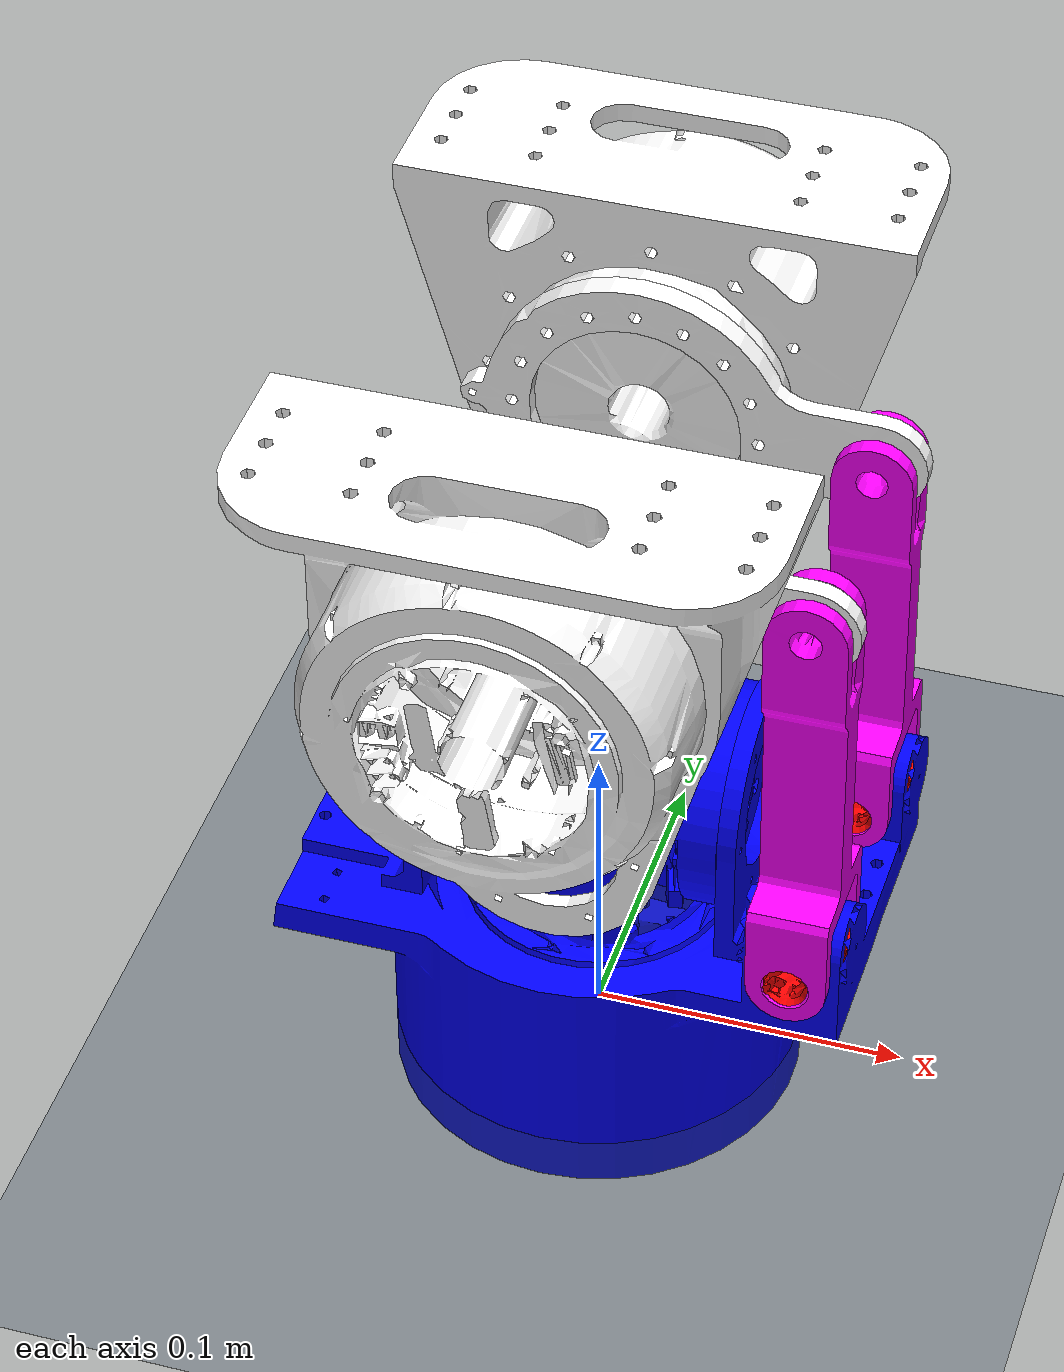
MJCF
<mujoco>
    <option gravity="0 0 0"/>
  <default>
   <default class="plastic">
     <geom solimp="0.5 0.99 0.0001" solref="0.005 1"/>

     <default class="plastic_visual">
       <geom type="mesh"  contype="0" conaffinity="0" group="2"/>
     </default>

     <default class="plastic_collision">
       <geom group="3"/>
     </default>

   </default>
  </default>
    <default>
        <joint type="hinge" frictionloss="0.01" damping='0.01' />
        <position ctrllimited="true" ctrlrange="-3.14 3.14" forcelimited="true" forcerange="-50 50" kp="10" />
    </default>

    <asset>
        <texture type="skybox" builtin="gradient" rgb1="0.3 0.5 0.7" rgb2="0 0 0" width="512" height="512" />
        <texture name="texplane" type="2d" builtin="checker" rgb1=".2 .3 .4" rgb2=".1 0.15 0.2" width="512" height="512" mark="cross" markrgb=".8 .8 .8" />

        <material name="matplane" reflectance="0.3" texture="texplane" texrepeat="1 1" texuniform="true" />
    </asset>
    <asset>
        <mesh name="base_link" file="base_link.STL"/>
        <mesh name="base_link_new" file="base_link_new.STL"/>
        <mesh name="link1" file="link1.STL"/>
        <mesh name="Link1" file="Link1.STL"/>
        <mesh name="link5" file="link5.STL"/>
        <mesh name="Link5" file="Link5.STL"/>
        <mesh name="link9" file="link9.STL"/>
        <mesh name="Link9" file="Link9.STL"/>
        <mesh name="link7" file="link7.STL"/>
        <mesh name="Link7" file="Link7.STL"/>
        <mesh name="link3" file="link3.STL"/>
        <mesh name="Link3" file="Link3.STL"/>
        <mesh name="link4" file="link4.STL"/>
        <mesh name="Link4" file="Link4.STL"/>
        <mesh name="link8" file="link8.STL"/>
        <mesh name="Link8" file="Link8.STL"/>
        <mesh name="link6" file="link6.STL"/>
        <mesh name="Link6" file="Link6.STL"/>
        <mesh name="Link2" file="Link2.STL"/>
        <mesh name="link2" file="link2.STL"/>
    </asset>

    <worldbody>
        <light directional="true" diffuse=".4 .4 .4" specular="0.1 0.1 0.1" pos="0 0 5.0" dir="0 0 -1" castshadow="false" />
        <light directional="true" diffuse=".6 .6 .6" specular="0.2 0.2 0.2" pos="0 0 4" dir="0 0 -1" />

        <geom name="ground" type="plane" size="0 0 1" pos="0 0 0" quat="1 0 0 0" material="matplane" condim="1" />
        <geom class="plastic_visual" type="mesh" pos="0 0 -0.017" rgba="0 0 1 1" mesh="base_link_new"/>

        <site name="site_o1" pos="0.0755 0.0395 0.082" size="0.001" rgba="0 0 1 1" type="sphere"/>
        <site name="site_o2" pos="0.0755 -0.0395 0.082" size="0.001" rgba="0 0 1 1" type="sphere"/>
        <body name="o" pos="0 0 0.117">

            <geom class="plastic_visual" type="mesh" rgba="0 0 1 1" mesh="link1"/>
            <joint name="j0" type="hinge" pos="0 0 -0.017" axis="1 0 0" />

                <body name="s1" pos="0 0 0">
                        <geom class="plastic_visual" type="mesh" pos="0 0.03775 0.09" rgba="1 1 1 1" mesh="link5" />
                         <geom class="plastic_visual" type="mesh" pos="0 -0.03775 0.09" rgba="1 1 1 1" mesh="link4" />
                        <joint name="j1" type="hinge" pos="0 0 0" axis="0 1 0" />
		        <body name="c1" pos="0 0.0395 0.09">
		            <geom class="plastic_visual" type="mesh" pos="0 0 0" rgba="1 1 1 1" mesh="link9" />
		            <joint name="j_c1" type="hinge" pos="0 0 0" axis="0 1 0" />

		            <body name ="b1" pos="0.0755 -0.0015 0">
		                <joint name="j_b1" type="ball" pos="0 0 0"/>
		                <geom class="plastic_visual" type="mesh" pos="0 0 0" rgba="1 0 1 1" mesh="link7" />
		                <body name="a1" pos="0 0.0015 -0.125">
		                     <geom class="plastic_visual" type="mesh" pos="0 0 0" rgba="1 0 0 1" mesh="link3" />
		                    <joint name="j_a1" type="hinge" pos="0 0 0" axis="1 0 0" />
		                    <joint name="j_a1_2" type="hinge" pos="0 0 0" axis="0 1 0" />

		                    <site name="site1" pos="0 0 0" size="0.005" rgba="0 1 0 1" type="sphere"/>
		                </body>
		            </body>

		        </body>

		        <body name="c2" pos="0 -0.0395 0.09">
		             <geom class="plastic_visual" type="mesh" pos="0 0 0" rgba="1 1 1 1" mesh="link8" />
		            <joint name="j_c2" type="hinge" pos="0 0 0" axis="0 1 0" />

		            <body name ="b2" pos="0.0755 0.0015 0">
		                <joint name="j_b2" type="ball" pos="0 0 0"/>
		                 <geom class="plastic_visual" type="mesh" pos="0 0 0" rgba="1 0 1 1" mesh="link6" />
		                <body name="a2" pos="0 -0.0015 -0.125">
		                    <geom class="plastic_visual" type="mesh" pos="0 0 0" rgba="1 0 0 1" mesh="link2" />
		                    <joint name="j_a2" type="hinge" pos="0 0 0" axis="1 0 0" />
		                    <joint name="j_a2_2" type="hinge" pos="0 0 0" axis="0 1 0" />

		                    <site name="site2" pos="0 0 0" size="0.005" rgba="0 1 0 1" type="sphere"/>

		                </body>
		            </body>
		        </body>
                  </body>

        </body>

    </worldbody>

    <equality>

        <connect name="con1" site1="site_o1" site2="site1" />
        <connect name="con2" site1="site_o2" site2="site2" />
    </equality>

    <actuator>
        <position joint="j_c1" ctrllimited="true" ctrlrange="-0.3 0.3" />
        <position joint="j_c2" ctrllimited="true" ctrlrange="-0.3 0.3" />
    </actuator>
</mujoco>
